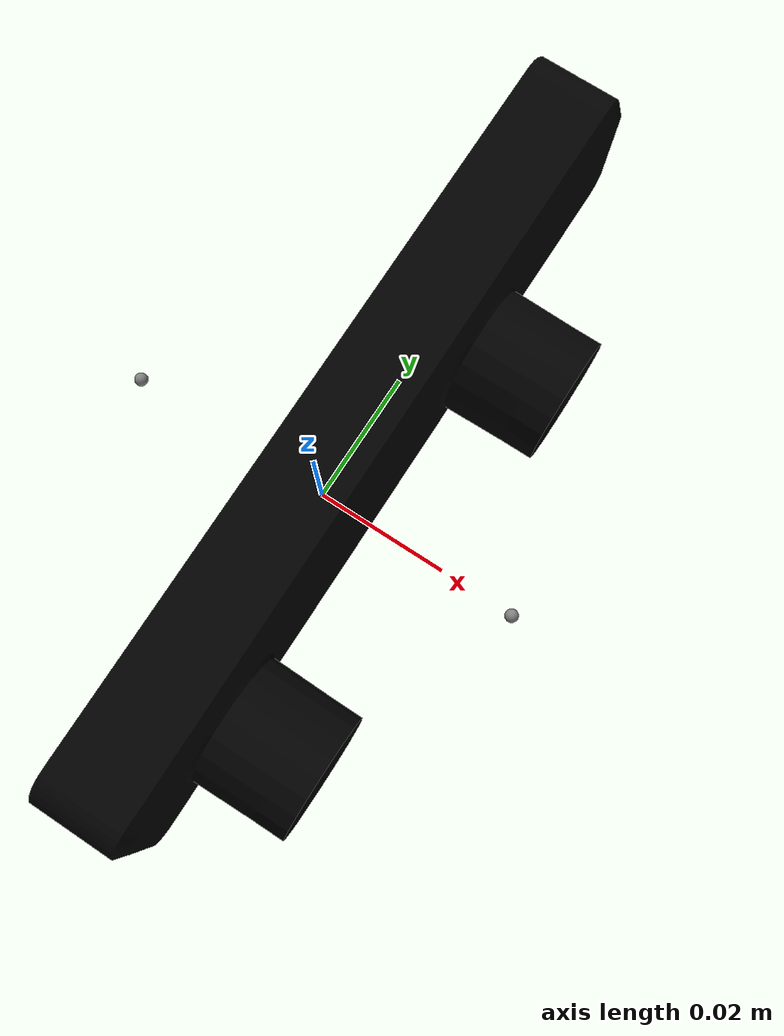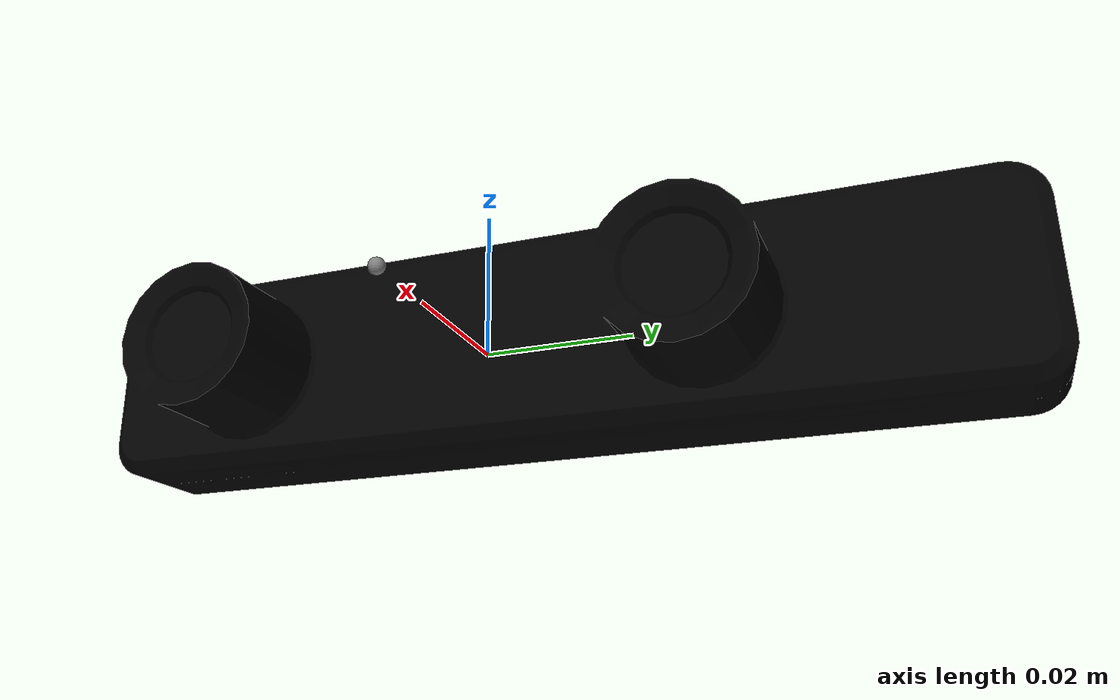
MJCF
<?xml version="1.0" encoding="utf-8"?>
<mujoco model="head_zed">
  <compiler angle="radian" meshdir="assets" autolimits="true" inertiafromgeom="false" fusestatic="false"/>
  <option timestep="0.001" integrator="implicitfast" solver="Newton" iterations="50" ls_iterations="10" gravity="0 0 -9.81"/>
  <default>
    <geom density="0"/>
    <default class="visual">
      <geom contype="0" conaffinity="0" group="2" density="0"/>
    </default>
    <default class="collision">
      <geom group="3" contype="1" conaffinity="1" condim="3" friction="1.0 0.005 0.0001" density="0"/>
    </default>
    <default class="wheel">
      <geom group="3" contype="1" conaffinity="1" condim="3" friction="1.2 0.005 0.0001" density="0"/>
    </default>
    <default class="finger_pad">
      <geom group="3" contype="1" conaffinity="1" condim="4" friction="1.0 0.005 0.0001" solref="0.02 1" solimp="0.9 0.95 0.001" density="0"/>
    </default>
  </default>
  <asset>
    <material name="sensor_cam_mat_0d02030f73" rgba="0 0 0 1"/>
    <mesh name="zed_mini" file="visual/zedm.obj"/>
  </asset>
  <worldbody>
    <body name="head_zed">
      <geom class="visual" type="mesh" mesh="zed_mini" material="sensor_cam_mat_0d02030f73"/>
      <site name="head_zed_left_camera_frame" size="0.001" pos="-0.0315 0 0"/>
      <site name="head_zed_left_camera_optical_frame" size="0.001" pos="-0.0315 0 0"/>
      <camera name="head_zed_left" pos="-0.0315 0 0" quat="6.123233996e-17 0 1 0" fovy="60" resolution="1280 720"/>
      <site name="head_zed_right_camera_frame" size="0.001" pos="0.0315 0 0"/>
      <site name="head_zed_right_camera_optical_frame" size="0.001" pos="0.0315 0 0"/>
      <camera name="head_zed_right" pos="0.0315 0 0" quat="6.123233996e-17 0 1 0" fovy="60" resolution="1280 720"/>
      <site name="head_zed_center_frame" size="0.001"/>
    </body>
  </worldbody>
</mujoco>
